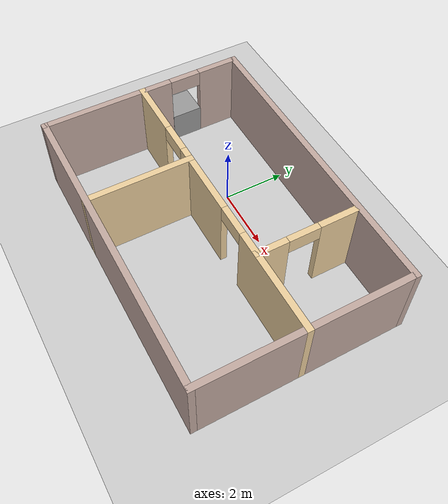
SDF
<sdf version="1.7">
 <world name="default">
  <scene><ambient>0.4 0.4 0.4 1</ambient><background>0.7 0.7 0.7 1</background><shadows>1</shadows></scene>
  <light name="sun" type="directional">
   <pose>0 0 10 0 -0 0</pose>
   <diffuse>0.8 0.8 0.8 1</diffuse>
   <specular>0.2 0.2 0.2 1</specular>
   <attenuation>
    <range>1000</range>
    <constant>0.9</constant>
    <linear>0.01</linear>
    <quadratic>0.001</quadratic>
   </attenuation>
   <direction>-0.5 0.1 -0.9</direction>
   <spot><inner_angle>0</inner_angle><outer_angle>0</outer_angle><falloff>0</falloff></spot>
  </light>
  <model name="ground_plane">
   <static>1</static>
   <link name="link">
    <collision name="collision">
     <geometry><plane><normal>0 0 1</normal><size>100 100</size></plane></geometry>
     <surface>
      <contact><collide_bitmask>65535</collide_bitmask></contact>
      <friction><ode><mu>100</mu><mu2>50</mu2></ode></friction>
     </surface>
    </collision>
    <visual name="visual">
     <cast_shadows>0</cast_shadows>
     <geometry><plane><normal>0 0 1</normal><size>100 100</size></plane></geometry>
     <material>
      <script><uri>file://media/materials/scripts/gazebo.material</uri><name>Gazebo/Grey</name></script>
     </material>
    </visual>
   </link>
  </model>
  <physics type="ode">
   <real_time_update_rate>1000</real_time_update_rate>
   <max_step_size>0.001</max_step_size>
   <real_time_factor>1</real_time_factor>
   <ode>
    <solver>
     <type>quick</type>
     <iters>150</iters>
     <precon_iters>0</precon_iters>
     <sor>1.4</sor>
     <use_dynamic_moi_rescaling>1</use_dynamic_moi_rescaling>
    </solver>
    <constraints>
     <cfm>1e-05</cfm>
     <erp>0.2</erp>
     <contact_max_correcting_vel>2000</contact_max_correcting_vel>
     <contact_surface_layer>0.01</contact_surface_layer>
    </constraints>
   </ode>
  </physics>
  <gravity>0 0 -9.8</gravity>
  <magnetic_field>6e-06 2.3e-05 -4.2e-05</magnetic_field>
  <atmosphere type="adiabatic"/>
  <spherical_coordinates>
   <surface_model>EARTH_WGS84</surface_model>
   <latitude_deg>0</latitude_deg>
   <longitude_deg>0</longitude_deg>
   <elevation>0</elevation>
   <heading_deg>0</heading_deg>
  </spherical_coordinates>
  <model name="Plan3_building">
   <pose>1.5044 -1.25527 0 0 -0 0</pose>
   <link name="Wall_10">
    <pose>-4.77195 6.1e-05 0 0 -0 -1.5708</pose>
    <visual name="Wall_10_Visual_0">
     <pose>-2.64794 0 1.25 0 -0 0</pose>
     <geometry><box><size>1.40012 0.2 2.5</size></box></geometry>
     <material>
      <script><uri>file://media/materials/scripts/gazebo.material</uri><name>Gazebo/Grey</name></script>
      <ambient>0.760784 0.662745 0.627451 1</ambient>
     </material>
     <meta><layer>0</layer></meta>
    </visual>
    <collision name="Wall_10_Collision_0">
     <geometry><box><size>1.40012 0.2 2.5</size></box></geometry>
     <pose>-2.64794 0 1.25 0 -0 0</pose>
    </collision>
    <visual name="Wall_10_Visual_1">
     <pose>1.20006 0 1.25 0 -0 0</pose>
     <geometry><box><size>4.29588 0.2 2.5</size></box></geometry>
     <material>
      <script><uri>file://media/materials/scripts/gazebo.material</uri><name>Gazebo/Grey</name></script>
      <ambient>0.760784 0.662745 0.627451 1</ambient>
     </material>
     <meta><layer>0</layer></meta>
    </visual>
    <collision name="Wall_10_Collision_1">
     <geometry><box><size>4.29588 0.2 2.5</size></box></geometry>
     <pose>1.20006 0 1.25 0 -0 0</pose>
    </collision>
    <visual name="Wall_10_Visual_2">
     <pose>-1.44788 0 2.25 0 -0 0</pose>
     <geometry><box><size>1 0.2 0.5</size></box></geometry>
     <material>
      <script><uri>file://media/materials/scripts/gazebo.material</uri><name>Gazebo/Grey</name></script>
      <ambient>0.760784 0.662745 0.627451 1</ambient>
     </material>
     <meta><layer>0</layer></meta>
    </visual>
    <collision name="Wall_10_Collision_2">
     <geometry><box><size>1 0.2 0.5</size></box></geometry>
     <pose>-1.44788 0 2.25 0 -0 0</pose>
    </collision>
   </link>
   <link name="Wall_12">
    <collision name="Wall_12_Collision">
     <geometry><box><size>9.744 0.2 2.5</size></box></geometry>
     <pose>0 0 1.25 0 -0 0</pose>
    </collision>
    <visual name="Wall_12_Visual">
     <pose>0 0 1.25 0 -0 0</pose>
     <geometry><box><size>9.744 0.2 2.5</size></box></geometry>
     <material>
      <script><uri>file://media/materials/scripts/gazebo.material</uri><name>Gazebo/Grey</name></script>
      <ambient>0.760784 0.662745 0.627451 1</ambient>
     </material>
     <meta><layer>0</layer></meta>
    </visual>
    <pose>1.7e-05 -3.248 0 0 -0 -1.3e-05</pose>
   </link>
   <link name="Wall_14">
    <collision name="Wall_14_Collision">
     <geometry><box><size>9.744 0.2 2.5</size></box></geometry>
     <pose>0 0 1.25 0 -0 0</pose>
    </collision>
    <visual name="Wall_14_Visual">
     <pose>0 0 1.25 0 -0 0</pose>
     <geometry><box><size>9.744 0.2 2.5</size></box></geometry>
     <material>
      <script><uri>file://media/materials/scripts/gazebo.material</uri><name>Gazebo/Grey</name></script>
      <ambient>0.760784 0.662745 0.627451 1</ambient>
     </material>
     <meta><layer>0</layer></meta>
    </visual>
    <pose>1.7e-05 3.248 0 0 -0 -1.3e-05</pose>
   </link>
   <link name="Wall_16">
    <collision name="Wall_16_Collision">
     <geometry><box><size>6.69588 0.2 2.5</size></box></geometry>
     <pose>0 0 1.25 0 -0 0</pose>
    </collision>
    <visual name="Wall_16_Visual">
     <pose>0 0 1.25 0 -0 0</pose>
     <geometry><box><size>6.69588 0.2 2.5</size></box></geometry>
     <material>
      <script><uri>file://media/materials/scripts/gazebo.material</uri><name>Gazebo/Grey</name></script>
      <ambient>0.760784 0.662745 0.627451 1</ambient>
     </material>
     <meta><layer>0</layer></meta>
    </visual>
    <pose>4.77198 -6.1e-05 0 0 -0 -1.5708</pose>
   </link>
   <link name="Wall_22">
    <pose>-1.8e-05 -6.1e-05 0 0 -0 0</pose>
    <visual name="Wall_22_Visual_0">
     <pose>-3.92131 0 1.25 0 -0 0</pose>
     <geometry><box><size>1.90137 0.2 2.5</size></box></geometry>
     <material>
      <script><uri>file://media/materials/scripts/gazebo.material</uri><name>Gazebo/Grey</name></script>
      <ambient>0.921569 0.807843 0.615686 1</ambient>
     </material>
     <meta><layer>0</layer></meta>
    </visual>
    <collision name="Wall_22_Collision_0">
     <geometry><box><size>1.90137 0.2 2.5</size></box></geometry>
     <pose>-3.92131 0 1.25 0 -0 0</pose>
    </collision>
    <visual name="Wall_22_Visual_1">
     <pose>-0.720813 0 1.25 0 -0 0</pose>
     <geometry><box><size>2.49963 0.2 2.5</size></box></geometry>
     <material>
      <script><uri>file://media/materials/scripts/gazebo.material</uri><name>Gazebo/Grey</name></script>
      <ambient>0.921569 0.807843 0.615686 1</ambient>
     </material>
     <meta><layer>0</layer></meta>
    </visual>
    <collision name="Wall_22_Collision_1">
     <geometry><box><size>2.49963 0.2 2.5</size></box></geometry>
     <pose>-0.720813 0 1.25 0 -0 0</pose>
    </collision>
    <visual name="Wall_22_Visual_2">
     <pose>3.2005 0 1.25 0 -0 0</pose>
     <geometry><box><size>3.343 0.2 2.5</size></box></geometry>
     <material>
      <script><uri>file://media/materials/scripts/gazebo.material</uri><name>Gazebo/Grey</name></script>
      <ambient>0.921569 0.807843 0.615686 1</ambient>
     </material>
     <meta><layer>0</layer></meta>
    </visual>
    <collision name="Wall_22_Collision_2">
     <geometry><box><size>3.343 0.2 2.5</size></box></geometry>
     <pose>3.2005 0 1.25 0 -0 0</pose>
    </collision>
    <visual name="Wall_22_Visual_3">
     <pose>-2.47063 0 2.25 0 -0 0</pose>
     <geometry><box><size>1 0.2 0.5</size></box></geometry>
     <material>
      <script><uri>file://media/materials/scripts/gazebo.material</uri><name>Gazebo/Grey</name></script>
      <ambient>0.921569 0.807843 0.615686 1</ambient>
     </material>
     <meta><layer>0</layer></meta>
    </visual>
    <collision name="Wall_22_Collision_3">
     <geometry><box><size>1 0.2 0.5</size></box></geometry>
     <pose>-2.47063 0 2.25 0 -0 0</pose>
    </collision>
    <visual name="Wall_22_Visual_4">
     <pose>1.029 0 2.25 0 -0 0</pose>
     <geometry><box><size>1 0.2 0.5</size></box></geometry>
     <material>
      <script><uri>file://media/materials/scripts/gazebo.material</uri><name>Gazebo/Grey</name></script>
      <ambient>0.921569 0.807843 0.615686 1</ambient>
     </material>
     <meta><layer>0</layer></meta>
    </visual>
    <collision name="Wall_22_Collision_4">
     <geometry><box><size>1 0.2 0.5</size></box></geometry>
     <pose>1.029 0 2.25 0 -0 0</pose>
    </collision>
   </link>
   <link name="Wall_30">
    <collision name="Wall_30_Collision">
     <geometry><box><size>3.448 0.2 2.5</size></box></geometry>
     <pose>0 0 1.25 0 -0 0</pose>
    </collision>
    <visual name="Wall_30_Visual">
     <pose>0 0 1.25 0 -0 0</pose>
     <geometry><box><size>3.448 0.2 2.5</size></box></geometry>
     <material>
      <script><uri>file://media/materials/scripts/gazebo.material</uri><name>Gazebo/Grey</name></script>
      <ambient>0.921569 0.807843 0.615686 1</ambient>
     </material>
     <meta><layer>0</layer></meta>
    </visual>
    <pose>-1.52002 -1.62406 0 0 -0 1.5708</pose>
   </link>
   <link name="Wall_32">
    <pose>2.28598 1.62394 0 0 -0 -1.5708</pose>
    <visual name="Wall_32_Visual_0">
     <pose>-1.024 0 1.25 0 -0 0</pose>
     <geometry><box><size>1.4 0.2 2.5</size></box></geometry>
     <material>
      <script><uri>file://media/materials/scripts/gazebo.material</uri><name>Gazebo/Grey</name></script>
      <ambient>0.921569 0.807843 0.615686 1</ambient>
     </material>
     <meta><layer>0</layer></meta>
    </visual>
    <collision name="Wall_32_Collision_0">
     <geometry><box><size>1.4 0.2 2.5</size></box></geometry>
     <pose>-1.024 0 1.25 0 -0 0</pose>
    </collision>
    <visual name="Wall_32_Visual_1">
     <pose>1.2 0 1.25 0 -0 0</pose>
     <geometry><box><size>1.048 0.2 2.5</size></box></geometry>
     <material>
      <script><uri>file://media/materials/scripts/gazebo.material</uri><name>Gazebo/Grey</name></script>
      <ambient>0.921569 0.807843 0.615686 1</ambient>
     </material>
     <meta><layer>0</layer></meta>
    </visual>
    <collision name="Wall_32_Collision_1">
     <geometry><box><size>1.048 0.2 2.5</size></box></geometry>
     <pose>1.2 0 1.25 0 -0 0</pose>
    </collision>
    <visual name="Wall_32_Visual_2">
     <pose>0.176 0 2.25 0 -0 0</pose>
     <geometry><box><size>1 0.2 0.5</size></box></geometry>
     <material>
      <script><uri>file://media/materials/scripts/gazebo.material</uri><name>Gazebo/Grey</name></script>
      <ambient>0.921569 0.807843 0.615686 1</ambient>
     </material>
     <meta><layer>0</layer></meta>
    </visual>
    <collision name="Wall_32_Collision_2">
     <geometry><box><size>1 0.2 0.5</size></box></geometry>
     <pose>0.176 0 2.25 0 -0 0</pose>
    </collision>
   </link>
   <static>1</static>
  </model>
  <model name="unit_box">
   <pose>-3.65976 0.192673 0.5 0 0 -4e-06</pose>
   <link name="link">
    <inertial>
     <mass>1</mass>
     <inertia>
      <ixx>0.166667</ixx>
      <ixy>0</ixy>
      <ixz>0</ixz>
      <iyy>0.166667</iyy>
      <iyz>0</iyz>
      <izz>0.166667</izz>
     </inertia>
    </inertial>
    <collision name="collision"><geometry><box><size>1 1 1</size></box></geometry></collision>
    <visual name="visual">
     <geometry><box><size>1 1 1</size></box></geometry>
     <material>
      <script><name>Gazebo/Grey</name><uri>file://media/materials/scripts/gazebo.material</uri></script>
     </material>
    </visual>
   </link>
  </model>
 </world>
</sdf>
